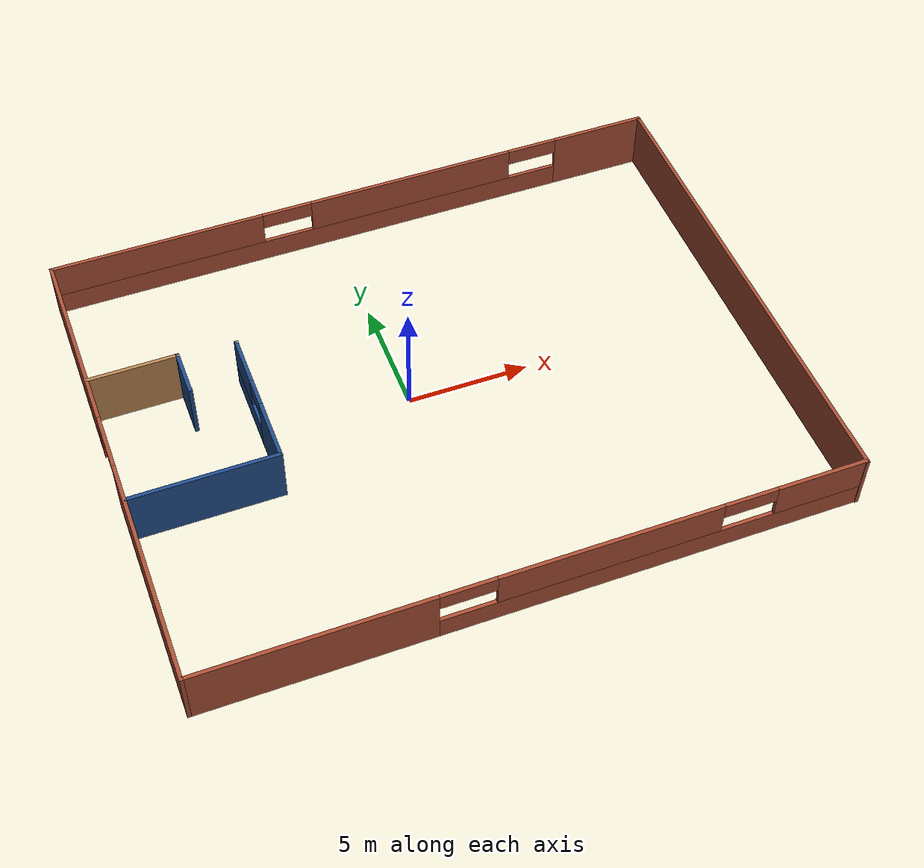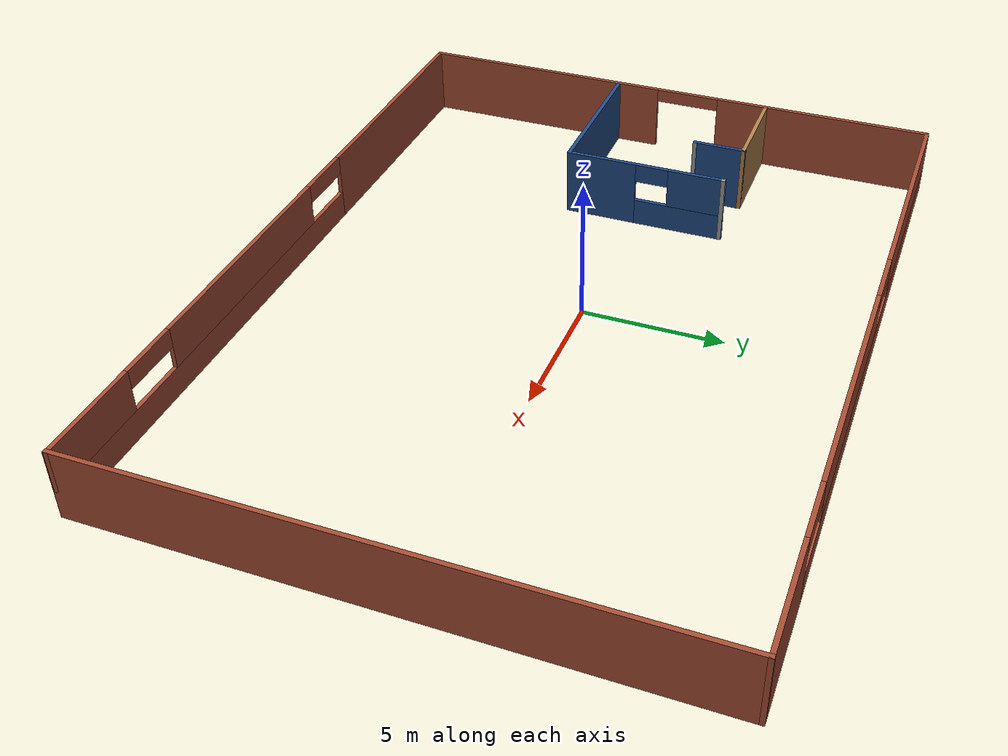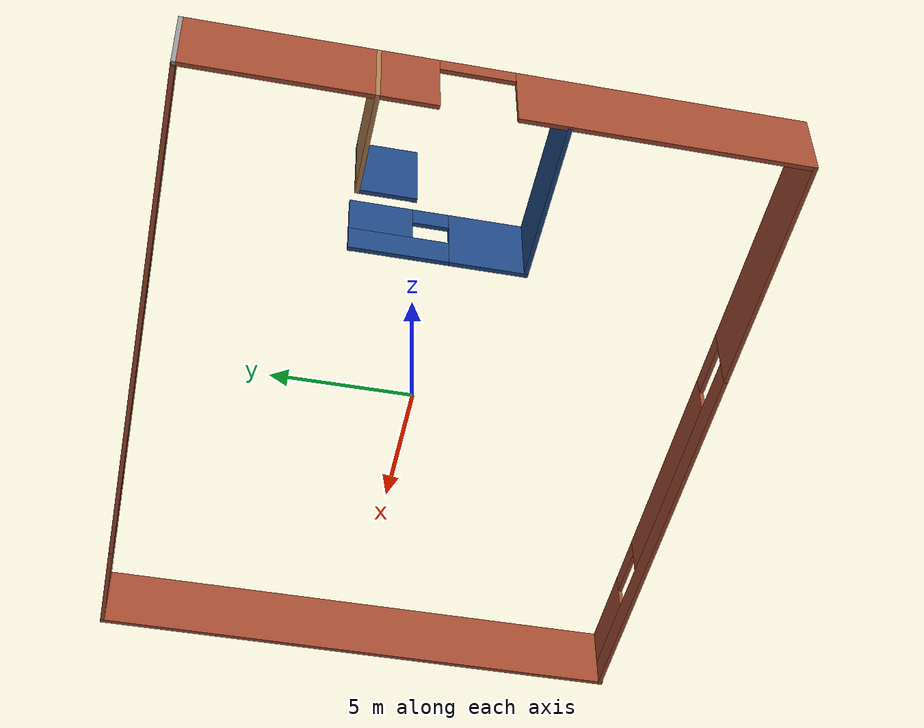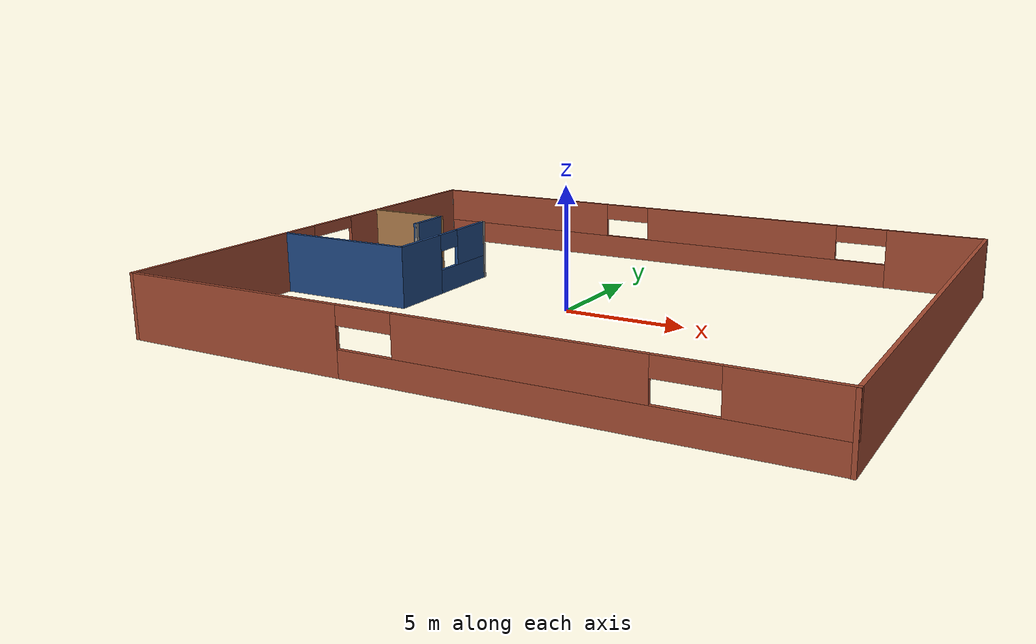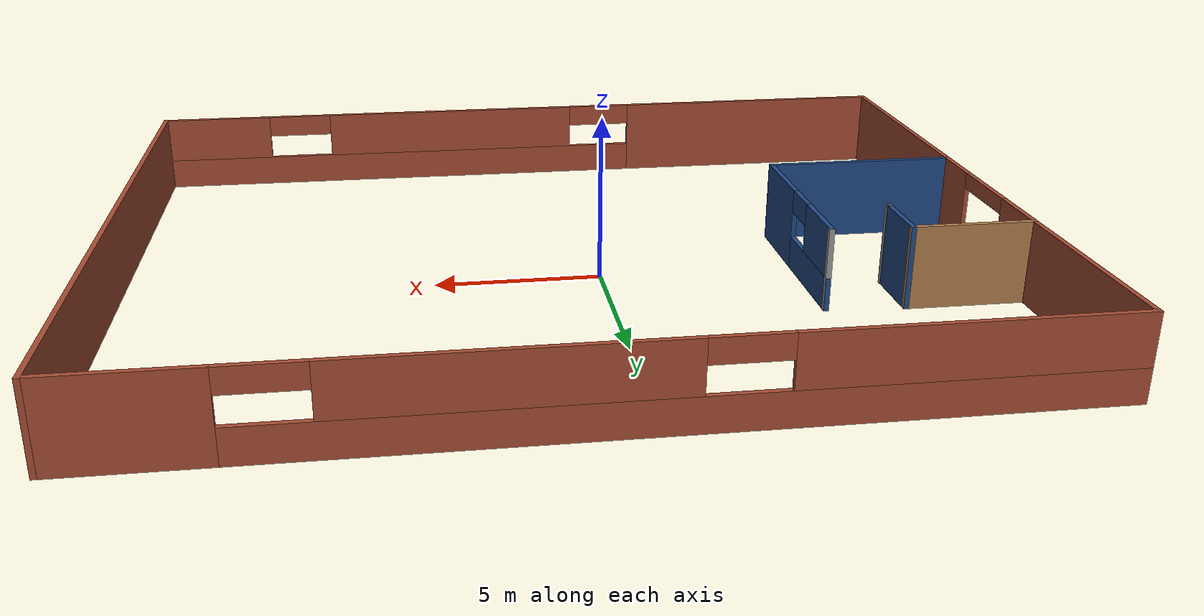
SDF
<?xml version='1.0'?>
<sdf version='1.6'>
  <model name='building_new'>
    <pose frame=''>1.12246 -0.468332 0 0 -0 0</pose>
    <link name='Wall_20'>
      <collision name='Wall_20_Collision'>
        <geometry>
          <box>
            <size>20.2808 0.15 2.5</size>
          </box>
        </geometry>
        <pose frame=''>0 0 1.25 0 -0 0</pose>
      </collision>
      <visual name='Wall_20_Visual'>
        <pose frame=''>0 0 1.25 0 -0 0</pose>
        <geometry>
          <box>
            <size>20.2808 0.15 2.5</size>
          </box>
        </geometry>
        <material>
          <script>
            <uri>file://media/materials/scripts/gazebo.material</uri>
            <name>Gazebo/Bricks</name>
          </script>
          <ambient>1 1 1 1</ambient>
        </material>
        <meta>
          <layer>0</layer>
        </meta>
      </visual>
      <pose frame=''>13.0505 0 0 0 -0 1.5708</pose>
    </link>
    <link name='Wall_21'>
      <pose frame=''>0.000534 10.0654 0 0 -0 3.14159</pose>
      <visual name='Wall_21_Visual_0'>
        <pose frame=''>-11.0951 0 1.25 0 -0 0</pose>
        <geometry>
          <box>
            <size>4.05977 0.15 2.5</size>
          </box>
        </geometry>
        <material>
          <script>
            <uri>file://media/materials/scripts/gazebo.material</uri>
            <name>Gazebo/Bricks</name>
          </script>
          <ambient>1 1 1 1</ambient>
        </material>
        <meta>
          <layer>0</layer>
        </meta>
      </visual>
      <collision name='Wall_21_Collision_0'>
        <geometry>
          <box>
            <size>4.05977 0.15 2.5</size>
          </box>
        </geometry>
        <pose frame=''>-11.0951 0 1.25 0 -0 0</pose>
      </collision>
      <visual name='Wall_21_Visual_1'>
        <pose frame=''>2.02988 0 0.5 0 -0 0</pose>
        <geometry>
          <box>
            <size>22.1902 0.15 1</size>
          </box>
        </geometry>
        <material>
          <script>
            <uri>file://media/materials/scripts/gazebo.material</uri>
            <name>Gazebo/Bricks</name>
          </script>
          <ambient>1 1 1 1</ambient>
        </material>
        <meta>
          <layer>0</layer>
        </meta>
      </visual>
      <collision name='Wall_21_Collision_1'>
        <geometry>
          <box>
            <size>22.1902 0.15 1</size>
          </box>
        </geometry>
        <pose frame=''>2.02988 0 0.5 0 -0 0</pose>
      </collision>
      <visual name='Wall_21_Visual_2'>
        <pose frame=''>-2.44176 0 1.75 0 -0 0</pose>
        <geometry>
          <box>
            <size>8.93975 0.15 1.5</size>
          </box>
        </geometry>
        <material>
          <script>
            <uri>file://media/materials/scripts/gazebo.material</uri>
            <name>Gazebo/Bricks</name>
          </script>
          <ambient>1 1 1 1</ambient>
        </material>
        <meta>
          <layer>0</layer>
        </meta>
      </visual>
      <collision name='Wall_21_Collision_2'>
        <geometry>
          <box>
            <size>8.93975 0.15 1.5</size>
          </box>
        </geometry>
        <pose frame=''>-2.44176 0 1.75 0 -0 0</pose>
      </collision>
      <visual name='Wall_21_Visual_3'>
        <pose frame=''>8.63437 0 1.75 0 -0 0</pose>
        <geometry>
          <box>
            <size>8.98126 0.15 1.5</size>
          </box>
        </geometry>
        <material>
          <script>
            <uri>file://media/materials/scripts/gazebo.material</uri>
            <name>Gazebo/Bricks</name>
          </script>
          <ambient>1 1 1 1</ambient>
        </material>
        <meta>
          <layer>0</layer>
        </meta>
      </visual>
      <collision name='Wall_21_Collision_3'>
        <geometry>
          <box>
            <size>8.98126 0.15 1.5</size>
          </box>
        </geometry>
        <pose frame=''>8.63437 0 1.75 0 -0 0</pose>
      </collision>
      <visual name='Wall_21_Visual_4'>
        <pose frame=''>-7.98844 0 2.15 0 -0 0</pose>
        <geometry>
          <box>
            <size>2.1536 0.15 0.7</size>
          </box>
        </geometry>
        <material>
          <script>
            <uri>file://media/materials/scripts/gazebo.material</uri>
            <name>Gazebo/Bricks</name>
          </script>
          <ambient>1 1 1 1</ambient>
        </material>
        <meta>
          <layer>0</layer>
        </meta>
      </visual>
      <collision name='Wall_21_Collision_4'>
        <geometry>
          <box>
            <size>2.1536 0.15 0.7</size>
          </box>
        </geometry>
        <pose frame=''>-7.98844 0 2.15 0 -0 0</pose>
      </collision>
      <visual name='Wall_21_Visual_5'>
        <pose frame=''>3.08593 0 2.15 0 -0 0</pose>
        <geometry>
          <box>
            <size>2.11563 0.15 0.7</size>
          </box>
        </geometry>
        <material>
          <script>
            <uri>file://media/materials/scripts/gazebo.material</uri>
            <name>Gazebo/Bricks</name>
          </script>
          <ambient>1 1 1 1</ambient>
        </material>
        <meta>
          <layer>0</layer>
        </meta>
      </visual>
      <collision name='Wall_21_Collision_5'>
        <geometry>
          <box>
            <size>2.11563 0.15 0.7</size>
          </box>
        </geometry>
        <pose frame=''>3.08593 0 2.15 0 -0 0</pose>
      </collision>
    </link>
    <link name='Wall_22'>
      <collision name='Wall_22_Collision'>
        <geometry>
          <box>
            <size>0.16 0.15 2.5</size>
          </box>
        </geometry>
        <pose frame=''>0 0 1.25 0 -0 0</pose>
      </collision>
      <visual name='Wall_22_Visual'>
        <pose frame=''>0 0 1.25 0 -0 0</pose>
        <geometry>
          <box>
            <size>0.16 0.15 2.5</size>
          </box>
        </geometry>
        <material>
          <script>
            <uri>file://media/materials/scripts/gazebo.material</uri>
            <name>Gazebo/Grey</name>
          </script>
          <ambient>1 1 1 1</ambient>
        </material>
        <meta>
          <layer>0</layer>
        </meta>
      </visual>
      <pose frame=''>-13.0445 10.0654 0 0 -0 0</pose>
    </link>
    <link name='Wall_24'>
      <pose frame=''>-13.0495 0.015382 0 0 -0 -1.5708</pose>
      <visual name='Wall_24_Visual_0'>
        <pose frame=''>-6.02122 0 1.25 0 -0 0</pose>
        <geometry>
          <box>
            <size>8.20756 0.15 2.5</size>
          </box>
        </geometry>
        <material>
          <script>
            <uri>file://media/materials/scripts/gazebo.material</uri>
            <name>Gazebo/Bricks</name>
          </script>
          <ambient>1 1 1 1</ambient>
        </material>
        <meta>
          <layer>0</layer>
        </meta>
      </visual>
      <collision name='Wall_24_Collision_0'>
        <geometry>
          <box>
            <size>8.20756 0.15 2.5</size>
          </box>
        </geometry>
        <pose frame=''>-6.02122 0 1.25 0 -0 0</pose>
      </collision>
      <visual name='Wall_24_Visual_1'>
        <pose frame=''>5.32308 0 1.25 0 -0 0</pose>
        <geometry>
          <box>
            <size>9.60384 0.15 2.5</size>
          </box>
        </geometry>
        <material>
          <script>
            <uri>file://media/materials/scripts/gazebo.material</uri>
            <name>Gazebo/Bricks</name>
          </script>
          <ambient>1 1 1 1</ambient>
        </material>
        <meta>
          <layer>0</layer>
        </meta>
      </visual>
      <collision name='Wall_24_Collision_1'>
        <geometry>
          <box>
            <size>9.60384 0.15 2.5</size>
          </box>
        </geometry>
        <pose frame=''>5.32308 0 1.25 0 -0 0</pose>
      </collision>
      <visual name='Wall_24_Visual_2'>
        <pose frame=''>-0.698138 0 2.25 0 -0 0</pose>
        <geometry>
          <box>
            <size>2.4386 0.15 0.5</size>
          </box>
        </geometry>
        <material>
          <script>
            <uri>file://media/materials/scripts/gazebo.material</uri>
            <name>Gazebo/Bricks</name>
          </script>
          <ambient>1 1 1 1</ambient>
        </material>
        <meta>
          <layer>0</layer>
        </meta>
      </visual>
      <collision name='Wall_24_Collision_2'>
        <geometry>
          <box>
            <size>2.4386 0.15 0.5</size>
          </box>
        </geometry>
        <pose frame=''>-0.698138 0 2.25 0 -0 0</pose>
      </collision>
    </link>
    <link name='Wall_25'>
      <pose frame=''>0.000534 -10.0346 0 0 -0 0</pose>
      <visual name='Wall_25_Visual_0'>
        <pose frame=''>-8.46511 0 1.25 0 -0 0</pose>
        <geometry>
          <box>
            <size>9.31978 0.15 2.5</size>
          </box>
        </geometry>
        <material>
          <script>
            <uri>file://media/materials/scripts/gazebo.material</uri>
            <name>Gazebo/Bricks</name>
          </script>
          <ambient>1 1 1 1</ambient>
        </material>
        <meta>
          <layer>0</layer>
        </meta>
      </visual>
      <collision name='Wall_25_Collision_0'>
        <geometry>
          <box>
            <size>9.31978 0.15 2.5</size>
          </box>
        </geometry>
        <pose frame=''>-8.46511 0 1.25 0 -0 0</pose>
      </collision>
      <visual name='Wall_25_Visual_1'>
        <pose frame=''>4.65989 0 0.5 0 -0 0</pose>
        <geometry>
          <box>
            <size>16.9302 0.15 1</size>
          </box>
        </geometry>
        <material>
          <script>
            <uri>file://media/materials/scripts/gazebo.material</uri>
            <name>Gazebo/Bricks</name>
          </script>
          <ambient>1 1 1 1</ambient>
        </material>
        <meta>
          <layer>0</layer>
        </meta>
      </visual>
      <collision name='Wall_25_Collision_1'>
        <geometry>
          <box>
            <size>16.9302 0.15 1</size>
          </box>
        </geometry>
        <pose frame=''>4.65989 0 0.5 0 -0 0</pose>
      </collision>
      <visual name='Wall_25_Visual_2'>
        <pose frame=''>2.8077 0 1.75 0 -0 0</pose>
        <geometry>
          <box>
            <size>8.84585 0.15 1.5</size>
          </box>
        </geometry>
        <material>
          <script>
            <uri>file://media/materials/scripts/gazebo.material</uri>
            <name>Gazebo/Bricks</name>
          </script>
          <ambient>1 1 1 1</ambient>
        </material>
        <meta>
          <layer>0</layer>
        </meta>
      </visual>
      <collision name='Wall_25_Collision_2'>
        <geometry>
          <box>
            <size>8.84585 0.15 1.5</size>
          </box>
        </geometry>
        <pose frame=''>2.8077 0 1.75 0 -0 0</pose>
      </collision>
      <visual name='Wall_25_Visual_3'>
        <pose frame=''>11.2577 0 1.75 0 -0 0</pose>
        <geometry>
          <box>
            <size>3.73468 0.15 1.5</size>
          </box>
        </geometry>
        <material>
          <script>
            <uri>file://media/materials/scripts/gazebo.material</uri>
            <name>Gazebo/Bricks</name>
          </script>
          <ambient>1 1 1 1</ambient>
        </material>
        <meta>
          <layer>0</layer>
        </meta>
      </visual>
      <collision name='Wall_25_Collision_3'>
        <geometry>
          <box>
            <size>3.73468 0.15 1.5</size>
          </box>
        </geometry>
        <pose frame=''>11.2577 0 1.75 0 -0 0</pose>
      </collision>
      <visual name='Wall_25_Visual_4'>
        <pose frame=''>-2.71022 0 2.15 0 -0 0</pose>
        <geometry>
          <box>
            <size>2.19 0.15 0.7</size>
          </box>
        </geometry>
        <material>
          <script>
            <uri>file://media/materials/scripts/gazebo.material</uri>
            <name>Gazebo/Bricks</name>
          </script>
          <ambient>1 1 1 1</ambient>
        </material>
        <meta>
          <layer>0</layer>
        </meta>
      </visual>
      <collision name='Wall_25_Collision_4'>
        <geometry>
          <box>
            <size>2.19 0.15 0.7</size>
          </box>
        </geometry>
        <pose frame=''>-2.71022 0 2.15 0 -0 0</pose>
      </collision>
      <visual name='Wall_25_Visual_5'>
        <pose frame=''>8.31047 0 2.15 0 -0 0</pose>
        <geometry>
          <box>
            <size>2.1597 0.15 0.7</size>
          </box>
        </geometry>
        <material>
          <script>
            <uri>file://media/materials/scripts/gazebo.material</uri>
            <name>Gazebo/Bricks</name>
          </script>
          <ambient>1 1 1 1</ambient>
        </material>
        <meta>
          <layer>0</layer>
        </meta>
      </visual>
      <collision name='Wall_25_Collision_5'>
        <geometry>
          <box>
            <size>2.1597 0.15 0.7</size>
          </box>
        </geometry>
        <pose frame=''>8.31047 0 2.15 0 -0 0</pose>
      </collision>
    </link>
    <link name='Wall_27'>
      <collision name='Wall_27_Collision'>
        <geometry>
          <box>
            <size>6 0.15 2.5</size>
          </box>
        </geometry>
        <pose frame=''>0 0 1.25 0 -0 0</pose>
      </collision>
      <visual name='Wall_27_Visual'>
        <pose frame=''>0 0 1.25 0 -0 0</pose>
        <geometry>
          <box>
            <size>6 0.15 2.5</size>
          </box>
        </geometry>
        <material>
          <script>
            <uri>file://media/materials/scripts/gazebo.material</uri>
            <name>Gazebo/Grey</name>
          </script>
          <ambient>0.12549 0.290196 0.529412 1</ambient>
        </material>
        <meta>
          <layer>0</layer>
        </meta>
      </visual>
      <pose frame=''>-10.054 -2.149 0 0 -0 0</pose>
    </link>
    <link name='Wall_28'>
      <pose frame=''>-7.12897 0.776002 0 0 -0 1.5708</pose>
      <visual name='Wall_28_Visual_0'>
        <pose frame=''>-1.67522 0 1.25 0 -0 0</pose>
        <geometry>
          <box>
            <size>2.64955 0.15 2.5</size>
          </box>
        </geometry>
        <material>
          <script>
            <uri>file://media/materials/scripts/gazebo.material</uri>
            <name>Gazebo/Grey</name>
          </script>
          <ambient>0.12549 0.290196 0.529412 1</ambient>
        </material>
        <meta>
          <layer>0</layer>
        </meta>
      </visual>
      <collision name='Wall_28_Collision_0'>
        <geometry>
          <box>
            <size>2.64955 0.15 2.5</size>
          </box>
        </geometry>
        <pose frame=''>-1.67522 0 1.25 0 -0 0</pose>
      </collision>
      <visual name='Wall_28_Visual_1'>
        <pose frame=''>1.32478 0 0.5 0 -0 0</pose>
        <geometry>
          <box>
            <size>3.35045 0.15 1</size>
          </box>
        </geometry>
        <material>
          <script>
            <uri>file://media/materials/scripts/gazebo.material</uri>
            <name>Gazebo/Grey</name>
          </script>
          <ambient>0.12549 0.290196 0.529412 1</ambient>
        </material>
        <meta>
          <layer>0</layer>
        </meta>
      </visual>
      <collision name='Wall_28_Collision_1'>
        <geometry>
          <box>
            <size>3.35045 0.15 1</size>
          </box>
        </geometry>
        <pose frame=''>1.32478 0 0.5 0 -0 0</pose>
      </collision>
      <visual name='Wall_28_Visual_2'>
        <pose frame=''>1.93477 0 1.75 0 -0 0</pose>
        <geometry>
          <box>
            <size>2.13045 0.15 1.5</size>
          </box>
        </geometry>
        <material>
          <script>
            <uri>file://media/materials/scripts/gazebo.material</uri>
            <name>Gazebo/Grey</name>
          </script>
          <ambient>0.12549 0.290196 0.529412 1</ambient>
        </material>
        <meta>
          <layer>0</layer>
        </meta>
      </visual>
      <collision name='Wall_28_Collision_2'>
        <geometry>
          <box>
            <size>2.13045 0.15 1.5</size>
          </box>
        </geometry>
        <pose frame=''>1.93477 0 1.75 0 -0 0</pose>
      </collision>
      <visual name='Wall_28_Visual_3'>
        <pose frame=''>0.259551 0 2.15 0 -0 0</pose>
        <geometry>
          <box>
            <size>1.22 0.15 0.7</size>
          </box>
        </geometry>
        <material>
          <script>
            <uri>file://media/materials/scripts/gazebo.material</uri>
            <name>Gazebo/Grey</name>
          </script>
          <ambient>0.12549 0.290196 0.529412 1</ambient>
        </material>
        <meta>
          <layer>0</layer>
        </meta>
      </visual>
      <collision name='Wall_28_Collision_3'>
        <geometry>
          <box>
            <size>1.22 0.15 0.7</size>
          </box>
        </geometry>
        <pose frame=''>0.259551 0 2.15 0 -0 0</pose>
      </collision>
    </link>
    <link name='Wall_29'>
      <collision name='Wall_29_Collision'>
        <geometry>
          <box>
            <size>0.16 0.15 2.5</size>
          </box>
        </geometry>
        <pose frame=''>0 0 1.25 0 -0 0</pose>
      </collision>
      <visual name='Wall_29_Visual'>
        <pose frame=''>0 0 1.25 0 -0 0</pose>
        <geometry>
          <box>
            <size>0.16 0.15 2.5</size>
          </box>
        </geometry>
        <material>
          <script>
            <uri>file://media/materials/scripts/gazebo.material</uri>
            <name>Gazebo/Grey</name>
          </script>
          <ambient>1 1 1 1</ambient>
        </material>
        <meta>
          <layer>0</layer>
        </meta>
      </visual>
      <pose frame=''>-7.12397 3.701 0 0 -0 0</pose>
    </link>
    <link name='Wall_31'>
      <collision name='Wall_31_Collision'>
        <geometry>
          <box>
            <size>3.75 0.15 2.5</size>
          </box>
        </geometry>
        <pose frame=''>0 0 1.25 0 -0 0</pose>
      </collision>
      <visual name='Wall_31_Visual'>
        <pose frame=''>0 0 1.25 0 -0 0</pose>
        <geometry>
          <box>
            <size>3.75 0.15 2.5</size>
          </box>
        </geometry>
        <material>
          <script>
            <uri>file://media/materials/scripts/gazebo.material</uri>
            <name>Gazebo/Wood</name>
          </script>
          <ambient>0.12549 0.290196 0.529412 1</ambient>
        </material>
        <meta>
          <layer>0</layer>
        </meta>
      </visual>
      <pose frame=''>-11.2505 3.86229 0 0 -0 0</pose>
    </link>
    <link name='Wall_32'>
      <collision name='Wall_32_Collision'>
        <geometry>
          <box>
            <size>2 0.15 2.5</size>
          </box>
        </geometry>
        <pose frame=''>0 0 1.25 0 -0 0</pose>
      </collision>
      <visual name='Wall_32_Visual'>
        <pose frame=''>0 0 1.25 0 -0 0</pose>
        <geometry>
          <box>
            <size>2 0.15 2.5</size>
          </box>
        </geometry>
        <material>
          <script>
            <uri>file://media/materials/scripts/gazebo.material</uri>
            <name>Gazebo/Grey</name>
          </script>
          <ambient>0.12549 0.290196 0.529412 1</ambient>
        </material>
        <meta>
          <layer>0</layer>
        </meta>
      </visual>
      <pose frame=''>-9.45054 2.93729 0 0 -0 -1.5708</pose>
    </link>
    <link name='Wall_33'>
      <collision name='Wall_33_Collision'>
        <geometry>
          <box>
            <size>0.16 0.15 2.5</size>
          </box>
        </geometry>
        <pose frame=''>0 0 1.25 0 -0 0</pose>
      </collision>
      <visual name='Wall_33_Visual'>
        <pose frame=''>0 0 1.25 0 -0 0</pose>
        <geometry>
          <box>
            <size>0.16 0.15 2.5</size>
          </box>
        </geometry>
        <material>
          <script>
            <uri>file://media/materials/scripts/gazebo.material</uri>
            <name>Gazebo/Grey</name>
          </script>
          <ambient>1 1 1 1</ambient>
        </material>
        <meta>
          <layer>0</layer>
        </meta>
      </visual>
      <pose frame=''>-9.44553 2.01229 0 0 -0 0</pose>
    </link>
    <static>1</static>
  </model>
</sdf>
